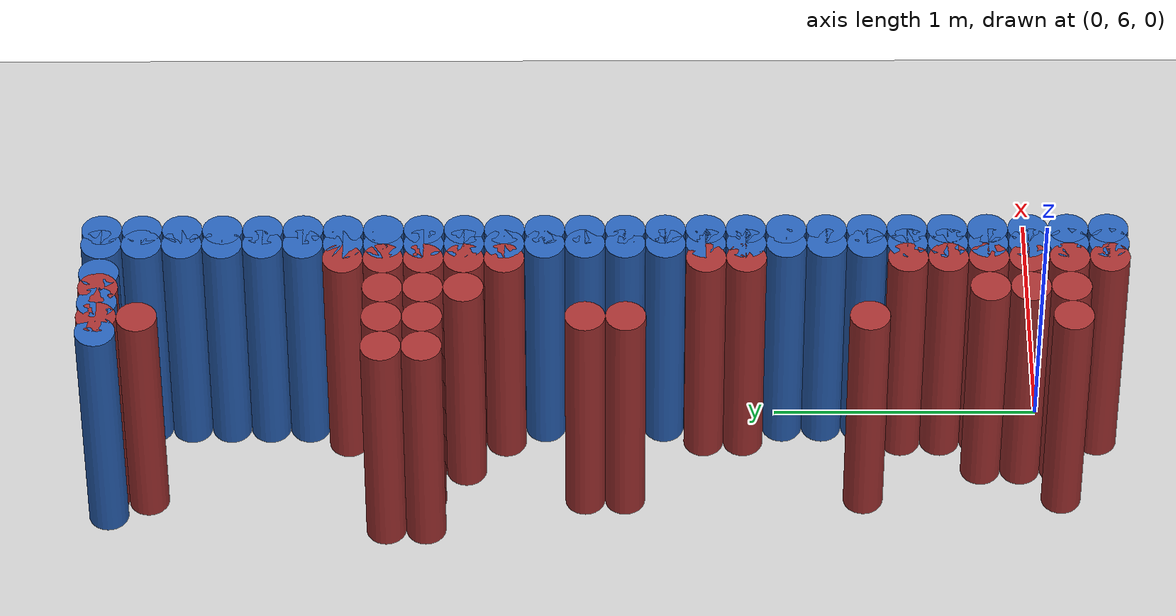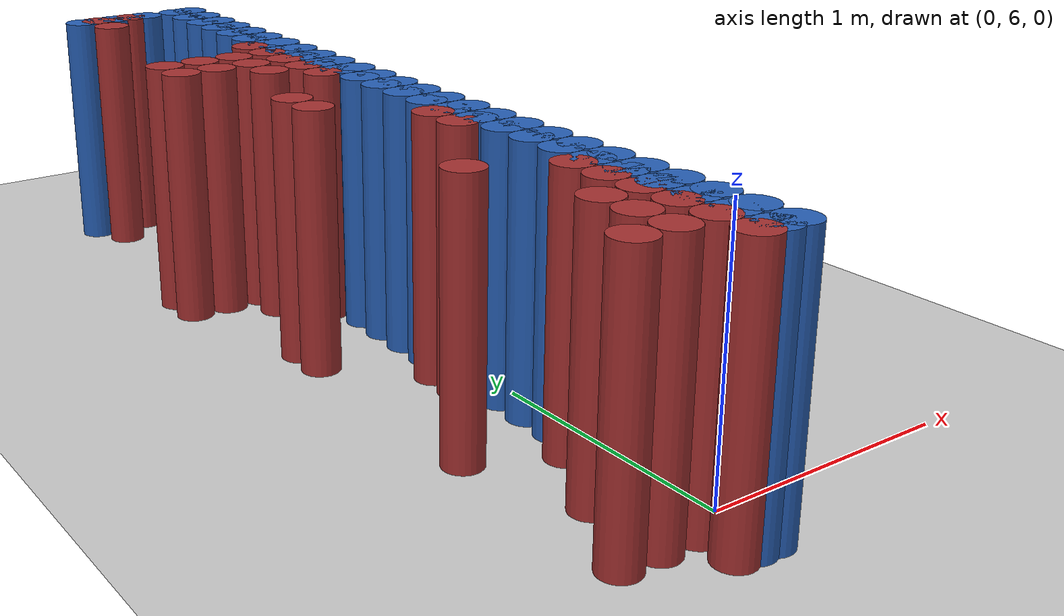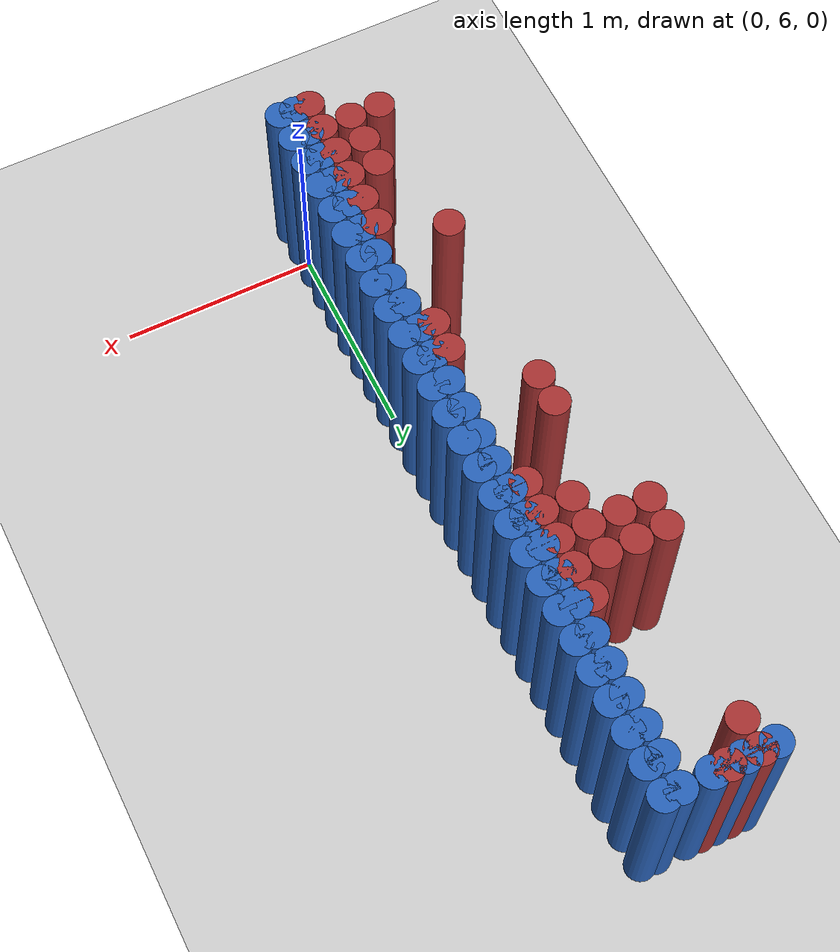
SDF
<sdf version="1.6">
 <world name="barn_world">
  <model name="ground_plane">
   <static>1</static>
   <link name="link">
    <collision name="collision">
     <geometry><plane><normal>0 0 1</normal><size>100 100</size></plane></geometry>
    </collision>
    <visual name="visual">
     <geometry><plane><normal>0 0 1</normal><size>100 100</size></plane></geometry>
     <material>
      <script><uri>file://media/materials/scripts/gazebo.material</uri><name>Gazebo/Grey</name></script>
     </material>
    </visual>
   </link>
  </model>
  <model name="unit_cylinder_272">
   <static>1</static>
   <pose>-0.6000 8.3250 0.5 0 0 0</pose>
   <link name="link">
    <collision name="collision">
     <geometry><cylinder><radius>0.075</radius><length>1</length></cylinder></geometry>
    </collision>
    <visual name="visual">
     <geometry><cylinder><radius>0.075</radius><length>1</length></cylinder></geometry>
     <material><ambient>0.648 0.192 0.192 1</ambient><diffuse>0.648 0.192 0.192 1</diffuse></material>
    </visual>
   </link>
  </model>
  <model name="unit_cylinder_273">
   <static>1</static>
   <pose>-0.6000 8.4750 0.5 0 0 0</pose>
   <link name="link">
    <collision name="collision">
     <geometry><cylinder><radius>0.075</radius><length>1</length></cylinder></geometry>
    </collision>
    <visual name="visual">
     <geometry><cylinder><radius>0.075</radius><length>1</length></cylinder></geometry>
     <material><ambient>0.648 0.192 0.192 1</ambient><diffuse>0.648 0.192 0.192 1</diffuse></material>
    </visual>
   </link>
  </model>
  <model name="unit_cylinder_275">
   <static>1</static>
   <pose>-0.4500 5.9250 0.5 0 0 0</pose>
   <link name="link">
    <collision name="collision">
     <geometry><cylinder><radius>0.075</radius><length>1</length></cylinder></geometry>
    </collision>
    <visual name="visual">
     <geometry><cylinder><radius>0.075</radius><length>1</length></cylinder></geometry>
     <material><ambient>0.648 0.192 0.192 1</ambient><diffuse>0.648 0.192 0.192 1</diffuse></material>
    </visual>
   </link>
  </model>
  <model name="unit_cylinder_276">
   <static>1</static>
   <pose>-0.4500 6.6750 0.5 0 0 0</pose>
   <link name="link">
    <collision name="collision">
     <geometry><cylinder><radius>0.075</radius><length>1</length></cylinder></geometry>
    </collision>
    <visual name="visual">
     <geometry><cylinder><radius>0.075</radius><length>1</length></cylinder></geometry>
     <material><ambient>0.648 0.192 0.192 1</ambient><diffuse>0.648 0.192 0.192 1</diffuse></material>
    </visual>
   </link>
  </model>
  <model name="unit_cylinder_277">
   <static>1</static>
   <pose>-0.4500 7.5750 0.5 0 0 0</pose>
   <link name="link">
    <collision name="collision">
     <geometry><cylinder><radius>0.075</radius><length>1</length></cylinder></geometry>
    </collision>
    <visual name="visual">
     <geometry><cylinder><radius>0.075</radius><length>1</length></cylinder></geometry>
     <material><ambient>0.648 0.192 0.192 1</ambient><diffuse>0.648 0.192 0.192 1</diffuse></material>
    </visual>
   </link>
  </model>
  <model name="unit_cylinder_278">
   <static>1</static>
   <pose>-0.4500 7.7250 0.5 0 0 0</pose>
   <link name="link">
    <collision name="collision">
     <geometry><cylinder><radius>0.075</radius><length>1</length></cylinder></geometry>
    </collision>
    <visual name="visual">
     <geometry><cylinder><radius>0.075</radius><length>1</length></cylinder></geometry>
     <material><ambient>0.648 0.192 0.192 1</ambient><diffuse>0.648 0.192 0.192 1</diffuse></material>
    </visual>
   </link>
  </model>
  <model name="unit_cylinder_279">
   <static>1</static>
   <pose>-0.4500 8.3250 0.5 0 0 0</pose>
   <link name="link">
    <collision name="collision">
     <geometry><cylinder><radius>0.075</radius><length>1</length></cylinder></geometry>
    </collision>
    <visual name="visual">
     <geometry><cylinder><radius>0.075</radius><length>1</length></cylinder></geometry>
     <material><ambient>0.648 0.192 0.192 1</ambient><diffuse>0.648 0.192 0.192 1</diffuse></material>
    </visual>
   </link>
  </model>
  <model name="unit_cylinder_280">
   <static>1</static>
   <pose>-0.4500 8.4750 0.5 0 0 0</pose>
   <link name="link">
    <collision name="collision">
     <geometry><cylinder><radius>0.075</radius><length>1</length></cylinder></geometry>
    </collision>
    <visual name="visual">
     <geometry><cylinder><radius>0.075</radius><length>1</length></cylinder></geometry>
     <material><ambient>0.648 0.192 0.192 1</ambient><diffuse>0.648 0.192 0.192 1</diffuse></material>
    </visual>
   </link>
  </model>
  <model name="unit_cylinder_281">
   <static>1</static>
   <pose>-0.4500 9.3750 0.5 0 0 0</pose>
   <link name="link">
    <collision name="collision">
     <geometry><cylinder><radius>0.075</radius><length>1</length></cylinder></geometry>
    </collision>
    <visual name="visual">
     <geometry><cylinder><radius>0.075</radius><length>1</length></cylinder></geometry>
     <material><ambient>0.648 0.192 0.192 1</ambient><diffuse>0.648 0.192 0.192 1</diffuse></material>
    </visual>
   </link>
  </model>
  <model name="unit_cylinder_282">
   <static>1</static>
   <pose>-0.4500 9.5250 0.5 0 0 0</pose>
   <link name="link">
    <collision name="collision">
     <geometry><cylinder><radius>0.075</radius><length>1</length></cylinder></geometry>
    </collision>
    <visual name="visual">
     <geometry><cylinder><radius>0.075</radius><length>1</length></cylinder></geometry>
     <material><ambient>0.648 0.192 0.192 1</ambient><diffuse>0.648 0.192 0.192 1</diffuse></material>
    </visual>
   </link>
  </model>
  <model name="unit_cylinder_285">
   <static>1</static>
   <pose>-0.3000 5.9250 0.5 0 0 0</pose>
   <link name="link">
    <collision name="collision">
     <geometry><cylinder><radius>0.075</radius><length>1</length></cylinder></geometry>
    </collision>
    <visual name="visual">
     <geometry><cylinder><radius>0.075</radius><length>1</length></cylinder></geometry>
     <material><ambient>0.648 0.192 0.192 1</ambient><diffuse>0.648 0.192 0.192 1</diffuse></material>
    </visual>
   </link>
  </model>
  <model name="unit_cylinder_286">
   <static>1</static>
   <pose>-0.3000 6.0750 0.5 0 0 0</pose>
   <link name="link">
    <collision name="collision">
     <geometry><cylinder><radius>0.075</radius><length>1</length></cylinder></geometry>
    </collision>
    <visual name="visual">
     <geometry><cylinder><radius>0.075</radius><length>1</length></cylinder></geometry>
     <material><ambient>0.648 0.192 0.192 1</ambient><diffuse>0.648 0.192 0.192 1</diffuse></material>
    </visual>
   </link>
  </model>
  <model name="unit_cylinder_287">
   <static>1</static>
   <pose>-0.3000 6.2250 0.5 0 0 0</pose>
   <link name="link">
    <collision name="collision">
     <geometry><cylinder><radius>0.075</radius><length>1</length></cylinder></geometry>
    </collision>
    <visual name="visual">
     <geometry><cylinder><radius>0.075</radius><length>1</length></cylinder></geometry>
     <material><ambient>0.648 0.192 0.192 1</ambient><diffuse>0.648 0.192 0.192 1</diffuse></material>
    </visual>
   </link>
  </model>
  <model name="unit_cylinder_288">
   <static>1</static>
   <pose>-0.3000 8.1750 0.5 0 0 0</pose>
   <link name="link">
    <collision name="collision">
     <geometry><cylinder><radius>0.075</radius><length>1</length></cylinder></geometry>
    </collision>
    <visual name="visual">
     <geometry><cylinder><radius>0.075</radius><length>1</length></cylinder></geometry>
     <material><ambient>0.648 0.192 0.192 1</ambient><diffuse>0.648 0.192 0.192 1</diffuse></material>
    </visual>
   </link>
  </model>
  <model name="unit_cylinder_289">
   <static>1</static>
   <pose>-0.3000 8.3250 0.5 0 0 0</pose>
   <link name="link">
    <collision name="collision">
     <geometry><cylinder><radius>0.075</radius><length>1</length></cylinder></geometry>
    </collision>
    <visual name="visual">
     <geometry><cylinder><radius>0.075</radius><length>1</length></cylinder></geometry>
     <material><ambient>0.648 0.192 0.192 1</ambient><diffuse>0.648 0.192 0.192 1</diffuse></material>
    </visual>
   </link>
  </model>
  <model name="unit_cylinder_290">
   <static>1</static>
   <pose>-0.3000 8.4750 0.5 0 0 0</pose>
   <link name="link">
    <collision name="collision">
     <geometry><cylinder><radius>0.075</radius><length>1</length></cylinder></geometry>
    </collision>
    <visual name="visual">
     <geometry><cylinder><radius>0.075</radius><length>1</length></cylinder></geometry>
     <material><ambient>0.648 0.192 0.192 1</ambient><diffuse>0.648 0.192 0.192 1</diffuse></material>
    </visual>
   </link>
  </model>
  <model name="unit_cylinder_291">
   <static>1</static>
   <pose>-0.3000 9.5250 0.5 0 0 0</pose>
   <link name="link">
    <collision name="collision">
     <geometry><cylinder><radius>0.075</radius><length>1</length></cylinder></geometry>
    </collision>
    <visual name="visual">
     <geometry><cylinder><radius>0.075</radius><length>1</length></cylinder></geometry>
     <material><ambient>0.648 0.192 0.192 1</ambient><diffuse>0.648 0.192 0.192 1</diffuse></material>
    </visual>
   </link>
  </model>
  <model name="unit_cylinder_295">
   <static>1</static>
   <pose>-0.1500 5.7750 0.5 0 0 0</pose>
   <link name="link">
    <collision name="collision">
     <geometry><cylinder><radius>0.075</radius><length>1</length></cylinder></geometry>
    </collision>
    <visual name="visual">
     <geometry><cylinder><radius>0.075</radius><length>1</length></cylinder></geometry>
     <material><ambient>0.648 0.192 0.192 1</ambient><diffuse>0.648 0.192 0.192 1</diffuse></material>
    </visual>
   </link>
  </model>
  <model name="unit_cylinder_296">
   <static>1</static>
   <pose>-0.1500 5.9250 0.5 0 0 0</pose>
   <link name="link">
    <collision name="collision">
     <geometry><cylinder><radius>0.075</radius><length>1</length></cylinder></geometry>
    </collision>
    <visual name="visual">
     <geometry><cylinder><radius>0.075</radius><length>1</length></cylinder></geometry>
     <material><ambient>0.648 0.192 0.192 1</ambient><diffuse>0.648 0.192 0.192 1</diffuse></material>
    </visual>
   </link>
  </model>
  <model name="unit_cylinder_297">
   <static>1</static>
   <pose>-0.1500 6.0750 0.5 0 0 0</pose>
   <link name="link">
    <collision name="collision">
     <geometry><cylinder><radius>0.075</radius><length>1</length></cylinder></geometry>
    </collision>
    <visual name="visual">
     <geometry><cylinder><radius>0.075</radius><length>1</length></cylinder></geometry>
     <material><ambient>0.648 0.192 0.192 1</ambient><diffuse>0.648 0.192 0.192 1</diffuse></material>
    </visual>
   </link>
  </model>
  <model name="unit_cylinder_298">
   <static>1</static>
   <pose>-0.1500 6.2250 0.5 0 0 0</pose>
   <link name="link">
    <collision name="collision">
     <geometry><cylinder><radius>0.075</radius><length>1</length></cylinder></geometry>
    </collision>
    <visual name="visual">
     <geometry><cylinder><radius>0.075</radius><length>1</length></cylinder></geometry>
     <material><ambient>0.648 0.192 0.192 1</ambient><diffuse>0.648 0.192 0.192 1</diffuse></material>
    </visual>
   </link>
  </model>
  <model name="unit_cylinder_299">
   <static>1</static>
   <pose>-0.1500 6.3750 0.5 0 0 0</pose>
   <link name="link">
    <collision name="collision">
     <geometry><cylinder><radius>0.075</radius><length>1</length></cylinder></geometry>
    </collision>
    <visual name="visual">
     <geometry><cylinder><radius>0.075</radius><length>1</length></cylinder></geometry>
     <material><ambient>0.648 0.192 0.192 1</ambient><diffuse>0.648 0.192 0.192 1</diffuse></material>
    </visual>
   </link>
  </model>
  <model name="unit_cylinder_300">
   <static>1</static>
   <pose>-0.1500 6.5250 0.5 0 0 0</pose>
   <link name="link">
    <collision name="collision">
     <geometry><cylinder><radius>0.075</radius><length>1</length></cylinder></geometry>
    </collision>
    <visual name="visual">
     <geometry><cylinder><radius>0.075</radius><length>1</length></cylinder></geometry>
     <material><ambient>0.648 0.192 0.192 1</ambient><diffuse>0.648 0.192 0.192 1</diffuse></material>
    </visual>
   </link>
  </model>
  <model name="unit_cylinder_301">
   <static>1</static>
   <pose>-0.1500 7.1250 0.5 0 0 0</pose>
   <link name="link">
    <collision name="collision">
     <geometry><cylinder><radius>0.075</radius><length>1</length></cylinder></geometry>
    </collision>
    <visual name="visual">
     <geometry><cylinder><radius>0.075</radius><length>1</length></cylinder></geometry>
     <material><ambient>0.648 0.192 0.192 1</ambient><diffuse>0.648 0.192 0.192 1</diffuse></material>
    </visual>
   </link>
  </model>
  <model name="unit_cylinder_302">
   <static>1</static>
   <pose>-0.1500 7.2750 0.5 0 0 0</pose>
   <link name="link">
    <collision name="collision">
     <geometry><cylinder><radius>0.075</radius><length>1</length></cylinder></geometry>
    </collision>
    <visual name="visual">
     <geometry><cylinder><radius>0.075</radius><length>1</length></cylinder></geometry>
     <material><ambient>0.648 0.192 0.192 1</ambient><diffuse>0.648 0.192 0.192 1</diffuse></material>
    </visual>
   </link>
  </model>
  <model name="unit_cylinder_303">
   <static>1</static>
   <pose>-0.1500 8.0250 0.5 0 0 0</pose>
   <link name="link">
    <collision name="collision">
     <geometry><cylinder><radius>0.075</radius><length>1</length></cylinder></geometry>
    </collision>
    <visual name="visual">
     <geometry><cylinder><radius>0.075</radius><length>1</length></cylinder></geometry>
     <material><ambient>0.648 0.192 0.192 1</ambient><diffuse>0.648 0.192 0.192 1</diffuse></material>
    </visual>
   </link>
  </model>
  <model name="unit_cylinder_304">
   <static>1</static>
   <pose>-0.1500 8.1750 0.5 0 0 0</pose>
   <link name="link">
    <collision name="collision">
     <geometry><cylinder><radius>0.075</radius><length>1</length></cylinder></geometry>
    </collision>
    <visual name="visual">
     <geometry><cylinder><radius>0.075</radius><length>1</length></cylinder></geometry>
     <material><ambient>0.648 0.192 0.192 1</ambient><diffuse>0.648 0.192 0.192 1</diffuse></material>
    </visual>
   </link>
  </model>
  <model name="unit_cylinder_305">
   <static>1</static>
   <pose>-0.1500 8.3250 0.5 0 0 0</pose>
   <link name="link">
    <collision name="collision">
     <geometry><cylinder><radius>0.075</radius><length>1</length></cylinder></geometry>
    </collision>
    <visual name="visual">
     <geometry><cylinder><radius>0.075</radius><length>1</length></cylinder></geometry>
     <material><ambient>0.648 0.192 0.192 1</ambient><diffuse>0.648 0.192 0.192 1</diffuse></material>
    </visual>
   </link>
  </model>
  <model name="unit_cylinder_306">
   <static>1</static>
   <pose>-0.1500 8.4750 0.5 0 0 0</pose>
   <link name="link">
    <collision name="collision">
     <geometry><cylinder><radius>0.075</radius><length>1</length></cylinder></geometry>
    </collision>
    <visual name="visual">
     <geometry><cylinder><radius>0.075</radius><length>1</length></cylinder></geometry>
     <material><ambient>0.648 0.192 0.192 1</ambient><diffuse>0.648 0.192 0.192 1</diffuse></material>
    </visual>
   </link>
  </model>
  <model name="unit_cylinder_307">
   <static>1</static>
   <pose>-0.1500 8.6250 0.5 0 0 0</pose>
   <link name="link">
    <collision name="collision">
     <geometry><cylinder><radius>0.075</radius><length>1</length></cylinder></geometry>
    </collision>
    <visual name="visual">
     <geometry><cylinder><radius>0.075</radius><length>1</length></cylinder></geometry>
     <material><ambient>0.648 0.192 0.192 1</ambient><diffuse>0.648 0.192 0.192 1</diffuse></material>
    </visual>
   </link>
  </model>
  <model name="unit_cylinder_312">
   <static>1</static>
   <pose>0.0000 5.7750 0.5 0 0 0</pose>
   <link name="link">
    <collision name="collision">
     <geometry><cylinder><radius>0.075</radius><length>1</length></cylinder></geometry>
    </collision>
    <visual name="visual">
     <geometry><cylinder><radius>0.075</radius><length>1</length></cylinder></geometry>
     <material><ambient>0.152 0.379 0.72 1</ambient><diffuse>0.152 0.379 0.72 1</diffuse></material>
    </visual>
   </link>
  </model>
  <model name="unit_cylinder_313">
   <static>1</static>
   <pose>0.0000 5.9250 0.5 0 0 0</pose>
   <link name="link">
    <collision name="collision">
     <geometry><cylinder><radius>0.075</radius><length>1</length></cylinder></geometry>
    </collision>
    <visual name="visual">
     <geometry><cylinder><radius>0.075</radius><length>1</length></cylinder></geometry>
     <material><ambient>0.152 0.379 0.72 1</ambient><diffuse>0.152 0.379 0.72 1</diffuse></material>
    </visual>
   </link>
  </model>
  <model name="unit_cylinder_314">
   <static>1</static>
   <pose>0.0000 6.0750 0.5 0 0 0</pose>
   <link name="link">
    <collision name="collision">
     <geometry><cylinder><radius>0.075</radius><length>1</length></cylinder></geometry>
    </collision>
    <visual name="visual">
     <geometry><cylinder><radius>0.075</radius><length>1</length></cylinder></geometry>
     <material><ambient>0.152 0.379 0.72 1</ambient><diffuse>0.152 0.379 0.72 1</diffuse></material>
    </visual>
   </link>
  </model>
  <model name="unit_cylinder_315">
   <static>1</static>
   <pose>0.0000 6.2250 0.5 0 0 0</pose>
   <link name="link">
    <collision name="collision">
     <geometry><cylinder><radius>0.075</radius><length>1</length></cylinder></geometry>
    </collision>
    <visual name="visual">
     <geometry><cylinder><radius>0.075</radius><length>1</length></cylinder></geometry>
     <material><ambient>0.152 0.379 0.72 1</ambient><diffuse>0.152 0.379 0.72 1</diffuse></material>
    </visual>
   </link>
  </model>
  <model name="unit_cylinder_316">
   <static>1</static>
   <pose>0.0000 6.3750 0.5 0 0 0</pose>
   <link name="link">
    <collision name="collision">
     <geometry><cylinder><radius>0.075</radius><length>1</length></cylinder></geometry>
    </collision>
    <visual name="visual">
     <geometry><cylinder><radius>0.075</radius><length>1</length></cylinder></geometry>
     <material><ambient>0.152 0.379 0.72 1</ambient><diffuse>0.152 0.379 0.72 1</diffuse></material>
    </visual>
   </link>
  </model>
  <model name="unit_cylinder_317">
   <static>1</static>
   <pose>0.0000 6.5250 0.5 0 0 0</pose>
   <link name="link">
    <collision name="collision">
     <geometry><cylinder><radius>0.075</radius><length>1</length></cylinder></geometry>
    </collision>
    <visual name="visual">
     <geometry><cylinder><radius>0.075</radius><length>1</length></cylinder></geometry>
     <material><ambient>0.152 0.379 0.72 1</ambient><diffuse>0.152 0.379 0.72 1</diffuse></material>
    </visual>
   </link>
  </model>
  <model name="unit_cylinder_318">
   <static>1</static>
   <pose>0.0000 6.6750 0.5 0 0 0</pose>
   <link name="link">
    <collision name="collision">
     <geometry><cylinder><radius>0.075</radius><length>1</length></cylinder></geometry>
    </collision>
    <visual name="visual">
     <geometry><cylinder><radius>0.075</radius><length>1</length></cylinder></geometry>
     <material><ambient>0.152 0.379 0.72 1</ambient><diffuse>0.152 0.379 0.72 1</diffuse></material>
    </visual>
   </link>
  </model>
  <model name="unit_cylinder_319">
   <static>1</static>
   <pose>0.0000 6.8250 0.5 0 0 0</pose>
   <link name="link">
    <collision name="collision">
     <geometry><cylinder><radius>0.075</radius><length>1</length></cylinder></geometry>
    </collision>
    <visual name="visual">
     <geometry><cylinder><radius>0.075</radius><length>1</length></cylinder></geometry>
     <material><ambient>0.152 0.379 0.72 1</ambient><diffuse>0.152 0.379 0.72 1</diffuse></material>
    </visual>
   </link>
  </model>
  <model name="unit_cylinder_320">
   <static>1</static>
   <pose>0.0000 6.9750 0.5 0 0 0</pose>
   <link name="link">
    <collision name="collision">
     <geometry><cylinder><radius>0.075</radius><length>1</length></cylinder></geometry>
    </collision>
    <visual name="visual">
     <geometry><cylinder><radius>0.075</radius><length>1</length></cylinder></geometry>
     <material><ambient>0.152 0.379 0.72 1</ambient><diffuse>0.152 0.379 0.72 1</diffuse></material>
    </visual>
   </link>
  </model>
  <model name="unit_cylinder_321">
   <static>1</static>
   <pose>0.0000 7.1250 0.5 0 0 0</pose>
   <link name="link">
    <collision name="collision">
     <geometry><cylinder><radius>0.075</radius><length>1</length></cylinder></geometry>
    </collision>
    <visual name="visual">
     <geometry><cylinder><radius>0.075</radius><length>1</length></cylinder></geometry>
     <material><ambient>0.152 0.379 0.72 1</ambient><diffuse>0.152 0.379 0.72 1</diffuse></material>
    </visual>
   </link>
  </model>
  <model name="unit_cylinder_322">
   <static>1</static>
   <pose>0.0000 7.2750 0.5 0 0 0</pose>
   <link name="link">
    <collision name="collision">
     <geometry><cylinder><radius>0.075</radius><length>1</length></cylinder></geometry>
    </collision>
    <visual name="visual">
     <geometry><cylinder><radius>0.075</radius><length>1</length></cylinder></geometry>
     <material><ambient>0.152 0.379 0.72 1</ambient><diffuse>0.152 0.379 0.72 1</diffuse></material>
    </visual>
   </link>
  </model>
  <model name="unit_cylinder_323">
   <static>1</static>
   <pose>0.0000 7.4250 0.5 0 0 0</pose>
   <link name="link">
    <collision name="collision">
     <geometry><cylinder><radius>0.075</radius><length>1</length></cylinder></geometry>
    </collision>
    <visual name="visual">
     <geometry><cylinder><radius>0.075</radius><length>1</length></cylinder></geometry>
     <material><ambient>0.152 0.379 0.72 1</ambient><diffuse>0.152 0.379 0.72 1</diffuse></material>
    </visual>
   </link>
  </model>
  <model name="unit_cylinder_324">
   <static>1</static>
   <pose>0.0000 7.5750 0.5 0 0 0</pose>
   <link name="link">
    <collision name="collision">
     <geometry><cylinder><radius>0.075</radius><length>1</length></cylinder></geometry>
    </collision>
    <visual name="visual">
     <geometry><cylinder><radius>0.075</radius><length>1</length></cylinder></geometry>
     <material><ambient>0.152 0.379 0.72 1</ambient><diffuse>0.152 0.379 0.72 1</diffuse></material>
    </visual>
   </link>
  </model>
  <model name="unit_cylinder_325">
   <static>1</static>
   <pose>0.0000 7.7250 0.5 0 0 0</pose>
   <link name="link">
    <collision name="collision">
     <geometry><cylinder><radius>0.075</radius><length>1</length></cylinder></geometry>
    </collision>
    <visual name="visual">
     <geometry><cylinder><radius>0.075</radius><length>1</length></cylinder></geometry>
     <material><ambient>0.152 0.379 0.72 1</ambient><diffuse>0.152 0.379 0.72 1</diffuse></material>
    </visual>
   </link>
  </model>
  <model name="unit_cylinder_326">
   <static>1</static>
   <pose>0.0000 7.8750 0.5 0 0 0</pose>
   <link name="link">
    <collision name="collision">
     <geometry><cylinder><radius>0.075</radius><length>1</length></cylinder></geometry>
    </collision>
    <visual name="visual">
     <geometry><cylinder><radius>0.075</radius><length>1</length></cylinder></geometry>
     <material><ambient>0.152 0.379 0.72 1</ambient><diffuse>0.152 0.379 0.72 1</diffuse></material>
    </visual>
   </link>
  </model>
  <model name="unit_cylinder_327">
   <static>1</static>
   <pose>0.0000 8.0250 0.5 0 0 0</pose>
   <link name="link">
    <collision name="collision">
     <geometry><cylinder><radius>0.075</radius><length>1</length></cylinder></geometry>
    </collision>
    <visual name="visual">
     <geometry><cylinder><radius>0.075</radius><length>1</length></cylinder></geometry>
     <material><ambient>0.152 0.379 0.72 1</ambient><diffuse>0.152 0.379 0.72 1</diffuse></material>
    </visual>
   </link>
  </model>
  <model name="unit_cylinder_328">
   <static>1</static>
   <pose>0.0000 8.1750 0.5 0 0 0</pose>
   <link name="link">
    <collision name="collision">
     <geometry><cylinder><radius>0.075</radius><length>1</length></cylinder></geometry>
    </collision>
    <visual name="visual">
     <geometry><cylinder><radius>0.075</radius><length>1</length></cylinder></geometry>
     <material><ambient>0.152 0.379 0.72 1</ambient><diffuse>0.152 0.379 0.72 1</diffuse></material>
    </visual>
   </link>
  </model>
  <model name="unit_cylinder_329">
   <static>1</static>
   <pose>0.0000 8.3250 0.5 0 0 0</pose>
   <link name="link">
    <collision name="collision">
     <geometry><cylinder><radius>0.075</radius><length>1</length></cylinder></geometry>
    </collision>
    <visual name="visual">
     <geometry><cylinder><radius>0.075</radius><length>1</length></cylinder></geometry>
     <material><ambient>0.152 0.379 0.72 1</ambient><diffuse>0.152 0.379 0.72 1</diffuse></material>
    </visual>
   </link>
  </model>
  <model name="unit_cylinder_330">
   <static>1</static>
   <pose>0.0000 8.4750 0.5 0 0 0</pose>
   <link name="link">
    <collision name="collision">
     <geometry><cylinder><radius>0.075</radius><length>1</length></cylinder></geometry>
    </collision>
    <visual name="visual">
     <geometry><cylinder><radius>0.075</radius><length>1</length></cylinder></geometry>
     <material><ambient>0.152 0.379 0.72 1</ambient><diffuse>0.152 0.379 0.72 1</diffuse></material>
    </visual>
   </link>
  </model>
  <model name="unit_cylinder_331">
   <static>1</static>
   <pose>0.0000 8.6250 0.5 0 0 0</pose>
   <link name="link">
    <collision name="collision">
     <geometry><cylinder><radius>0.075</radius><length>1</length></cylinder></geometry>
    </collision>
    <visual name="visual">
     <geometry><cylinder><radius>0.075</radius><length>1</length></cylinder></geometry>
     <material><ambient>0.152 0.379 0.72 1</ambient><diffuse>0.152 0.379 0.72 1</diffuse></material>
    </visual>
   </link>
  </model>
  <model name="unit_cylinder_332">
   <static>1</static>
   <pose>0.0000 8.7750 0.5 0 0 0</pose>
   <link name="link">
    <collision name="collision">
     <geometry><cylinder><radius>0.075</radius><length>1</length></cylinder></geometry>
    </collision>
    <visual name="visual">
     <geometry><cylinder><radius>0.075</radius><length>1</length></cylinder></geometry>
     <material><ambient>0.152 0.379 0.72 1</ambient><diffuse>0.152 0.379 0.72 1</diffuse></material>
    </visual>
   </link>
  </model>
  <model name="unit_cylinder_333">
   <static>1</static>
   <pose>0.0000 8.9250 0.5 0 0 0</pose>
   <link name="link">
    <collision name="collision">
     <geometry><cylinder><radius>0.075</radius><length>1</length></cylinder></geometry>
    </collision>
    <visual name="visual">
     <geometry><cylinder><radius>0.075</radius><length>1</length></cylinder></geometry>
     <material><ambient>0.152 0.379 0.72 1</ambient><diffuse>0.152 0.379 0.72 1</diffuse></material>
    </visual>
   </link>
  </model>
  <model name="unit_cylinder_334">
   <static>1</static>
   <pose>0.0000 9.0750 0.5 0 0 0</pose>
   <link name="link">
    <collision name="collision">
     <geometry><cylinder><radius>0.075</radius><length>1</length></cylinder></geometry>
    </collision>
    <visual name="visual">
     <geometry><cylinder><radius>0.075</radius><length>1</length></cylinder></geometry>
     <material><ambient>0.152 0.379 0.72 1</ambient><diffuse>0.152 0.379 0.72 1</diffuse></material>
    </visual>
   </link>
  </model>
  <model name="unit_cylinder_335">
   <static>1</static>
   <pose>0.0000 9.2250 0.5 0 0 0</pose>
   <link name="link">
    <collision name="collision">
     <geometry><cylinder><radius>0.075</radius><length>1</length></cylinder></geometry>
    </collision>
    <visual name="visual">
     <geometry><cylinder><radius>0.075</radius><length>1</length></cylinder></geometry>
     <material><ambient>0.152 0.379 0.72 1</ambient><diffuse>0.152 0.379 0.72 1</diffuse></material>
    </visual>
   </link>
  </model>
  <model name="unit_cylinder_336">
   <static>1</static>
   <pose>0.0000 9.3750 0.5 0 0 0</pose>
   <link name="link">
    <collision name="collision">
     <geometry><cylinder><radius>0.075</radius><length>1</length></cylinder></geometry>
    </collision>
    <visual name="visual">
     <geometry><cylinder><radius>0.075</radius><length>1</length></cylinder></geometry>
     <material><ambient>0.152 0.379 0.72 1</ambient><diffuse>0.152 0.379 0.72 1</diffuse></material>
    </visual>
   </link>
  </model>
  <model name="unit_cylinder_337">
   <static>1</static>
   <pose>0.0000 9.5250 0.5 0 0 0</pose>
   <link name="link">
    <collision name="collision">
     <geometry><cylinder><radius>0.075</radius><length>1</length></cylinder></geometry>
    </collision>
    <visual name="visual">
     <geometry><cylinder><radius>0.075</radius><length>1</length></cylinder></geometry>
     <material><ambient>0.152 0.379 0.72 1</ambient><diffuse>0.152 0.379 0.72 1</diffuse></material>
    </visual>
   </link>
  </model>
  <model name="unit_cylinder_338">
   <static>1</static>
   <pose>-0.0750 9.5250 0.5 0 0 0</pose>
   <link name="link">
    <collision name="collision">
     <geometry><cylinder><radius>0.075</radius><length>1</length></cylinder></geometry>
    </collision>
    <visual name="visual">
     <geometry><cylinder><radius>0.075</radius><length>1</length></cylinder></geometry>
     <material><ambient>0.152 0.379 0.72 1</ambient><diffuse>0.152 0.379 0.72 1</diffuse></material>
    </visual>
   </link>
  </model>
  <model name="unit_cylinder_339">
   <static>1</static>
   <pose>-0.2250 9.5250 0.5 0 0 0</pose>
   <link name="link">
    <collision name="collision">
     <geometry><cylinder><radius>0.075</radius><length>1</length></cylinder></geometry>
    </collision>
    <visual name="visual">
     <geometry><cylinder><radius>0.075</radius><length>1</length></cylinder></geometry>
     <material><ambient>0.152 0.379 0.72 1</ambient><diffuse>0.152 0.379 0.72 1</diffuse></material>
    </visual>
   </link>
  </model>
  <model name="unit_cylinder_340">
   <static>1</static>
   <pose>-0.3750 9.5250 0.5 0 0 0</pose>
   <link name="link">
    <collision name="collision">
     <geometry><cylinder><radius>0.075</radius><length>1</length></cylinder></geometry>
    </collision>
    <visual name="visual">
     <geometry><cylinder><radius>0.075</radius><length>1</length></cylinder></geometry>
     <material><ambient>0.152 0.379 0.72 1</ambient><diffuse>0.152 0.379 0.72 1</diffuse></material>
    </visual>
   </link>
  </model>
  <model name="unit_cylinder_341">
   <static>1</static>
   <pose>-0.5250 9.5250 0.5 0 0 0</pose>
   <link name="link">
    <collision name="collision">
     <geometry><cylinder><radius>0.075</radius><length>1</length></cylinder></geometry>
    </collision>
    <visual name="visual">
     <geometry><cylinder><radius>0.075</radius><length>1</length></cylinder></geometry>
     <material><ambient>0.152 0.379 0.72 1</ambient><diffuse>0.152 0.379 0.72 1</diffuse></material>
    </visual>
   </link>
  </model>
  <model name="unit_cylinder_376">
   <static>1</static>
   <pose>-0.0750 5.7750 0.5 0 0 0</pose>
   <link name="link">
    <collision name="collision">
     <geometry><cylinder><radius>0.075</radius><length>1</length></cylinder></geometry>
    </collision>
    <visual name="visual">
     <geometry><cylinder><radius>0.075</radius><length>1</length></cylinder></geometry>
     <material><ambient>0.152 0.379 0.72 1</ambient><diffuse>0.152 0.379 0.72 1</diffuse></material>
    </visual>
   </link>
  </model>
  <model name="unit_cylinder_378">
   <static>1</static>
   <pose>-0.0750 5.9250 0.5 0 0 0</pose>
   <link name="link">
    <collision name="collision">
     <geometry><cylinder><radius>0.075</radius><length>1</length></cylinder></geometry>
    </collision>
    <visual name="visual">
     <geometry><cylinder><radius>0.075</radius><length>1</length></cylinder></geometry>
     <material><ambient>0.152 0.379 0.72 1</ambient><diffuse>0.152 0.379 0.72 1</diffuse></material>
    </visual>
   </link>
  </model>
  <model name="unit_cylinder_380">
   <static>1</static>
   <pose>-0.0750 6.0750 0.5 0 0 0</pose>
   <link name="link">
    <collision name="collision">
     <geometry><cylinder><radius>0.075</radius><length>1</length></cylinder></geometry>
    </collision>
    <visual name="visual">
     <geometry><cylinder><radius>0.075</radius><length>1</length></cylinder></geometry>
     <material><ambient>0.152 0.379 0.72 1</ambient><diffuse>0.152 0.379 0.72 1</diffuse></material>
    </visual>
   </link>
  </model>
  <model name="unit_cylinder_382">
   <static>1</static>
   <pose>-0.0750 6.2250 0.5 0 0 0</pose>
   <link name="link">
    <collision name="collision">
     <geometry><cylinder><radius>0.075</radius><length>1</length></cylinder></geometry>
    </collision>
    <visual name="visual">
     <geometry><cylinder><radius>0.075</radius><length>1</length></cylinder></geometry>
     <material><ambient>0.152 0.379 0.72 1</ambient><diffuse>0.152 0.379 0.72 1</diffuse></material>
    </visual>
   </link>
  </model>
  <model name="unit_cylinder_384">
   <static>1</static>
   <pose>-0.0750 6.3750 0.5 0 0 0</pose>
   <link name="link">
    <collision name="collision">
     <geometry><cylinder><radius>0.075</radius><length>1</length></cylinder></geometry>
    </collision>
    <visual name="visual">
     <geometry><cylinder><radius>0.075</radius><length>1</length></cylinder></geometry>
     <material><ambient>0.152 0.379 0.72 1</ambient><diffuse>0.152 0.379 0.72 1</diffuse></material>
    </visual>
   </link>
  </model>
  <model name="unit_cylinder_386">
   <static>1</static>
   <pose>-0.0750 6.5250 0.5 0 0 0</pose>
   <link name="link">
    <collision name="collision">
     <geometry><cylinder><radius>0.075</radius><length>1</length></cylinder></geometry>
    </collision>
    <visual name="visual">
     <geometry><cylinder><radius>0.075</radius><length>1</length></cylinder></geometry>
     <material><ambient>0.152 0.379 0.72 1</ambient><diffuse>0.152 0.379 0.72 1</diffuse></material>
    </visual>
   </link>
  </model>
  <model name="unit_cylinder_388">
   <static>1</static>
   <pose>-0.0750 6.6750 0.5 0 0 0</pose>
   <link name="link">
    <collision name="collision">
     <geometry><cylinder><radius>0.075</radius><length>1</length></cylinder></geometry>
    </collision>
    <visual name="visual">
     <geometry><cylinder><radius>0.075</radius><length>1</length></cylinder></geometry>
     <material><ambient>0.152 0.379 0.72 1</ambient><diffuse>0.152 0.379 0.72 1</diffuse></material>
    </visual>
   </link>
  </model>
  <model name="unit_cylinder_390">
   <static>1</static>
   <pose>-0.0750 6.8250 0.5 0 0 0</pose>
   <link name="link">
    <collision name="collision">
     <geometry><cylinder><radius>0.075</radius><length>1</length></cylinder></geometry>
    </collision>
    <visual name="visual">
     <geometry><cylinder><radius>0.075</radius><length>1</length></cylinder></geometry>
     <material><ambient>0.152 0.379 0.72 1</ambient><diffuse>0.152 0.379 0.72 1</diffuse></material>
    </visual>
   </link>
  </model>
  <model name="unit_cylinder_392">
   <static>1</static>
   <pose>-0.0750 6.9750 0.5 0 0 0</pose>
   <link name="link">
    <collision name="collision">
     <geometry><cylinder><radius>0.075</radius><length>1</length></cylinder></geometry>
    </collision>
    <visual name="visual">
     <geometry><cylinder><radius>0.075</radius><length>1</length></cylinder></geometry>
     <material><ambient>0.152 0.379 0.72 1</ambient><diffuse>0.152 0.379 0.72 1</diffuse></material>
    </visual>
   </link>
  </model>
  <model name="unit_cylinder_394">
   <static>1</static>
   <pose>-0.0750 7.1250 0.5 0 0 0</pose>
   <link name="link">
    <collision name="collision">
     <geometry><cylinder><radius>0.075</radius><length>1</length></cylinder></geometry>
    </collision>
    <visual name="visual">
     <geometry><cylinder><radius>0.075</radius><length>1</length></cylinder></geometry>
     <material><ambient>0.152 0.379 0.72 1</ambient><diffuse>0.152 0.379 0.72 1</diffuse></material>
    </visual>
   </link>
  </model>
  <model name="unit_cylinder_396">
   <static>1</static>
   <pose>-0.0750 7.2750 0.5 0 0 0</pose>
   <link name="link">
    <collision name="collision">
     <geometry><cylinder><radius>0.075</radius><length>1</length></cylinder></geometry>
    </collision>
    <visual name="visual">
     <geometry><cylinder><radius>0.075</radius><length>1</length></cylinder></geometry>
     <material><ambient>0.152 0.379 0.72 1</ambient><diffuse>0.152 0.379 0.72 1</diffuse></material>
    </visual>
   </link>
  </model>
  <model name="unit_cylinder_398">
   <static>1</static>
   <pose>-0.0750 7.4250 0.5 0 0 0</pose>
   <link name="link">
    <collision name="collision">
     <geometry><cylinder><radius>0.075</radius><length>1</length></cylinder></geometry>
    </collision>
    <visual name="visual">
     <geometry><cylinder><radius>0.075</radius><length>1</length></cylinder></geometry>
     <material><ambient>0.152 0.379 0.72 1</ambient><diffuse>0.152 0.379 0.72 1</diffuse></material>
    </visual>
   </link>
  </model>
  <model name="unit_cylinder_400">
   <static>1</static>
   <pose>-0.0750 7.5750 0.5 0 0 0</pose>
   <link name="link">
    <collision name="collision">
     <geometry><cylinder><radius>0.075</radius><length>1</length></cylinder></geometry>
    </collision>
    <visual name="visual">
     <geometry><cylinder><radius>0.075</radius><length>1</length></cylinder></geometry>
     <material><ambient>0.152 0.379 0.72 1</ambient><diffuse>0.152 0.379 0.72 1</diffuse></material>
    </visual>
   </link>
  </model>
  <model name="unit_cylinder_402">
   <static>1</static>
   <pose>-0.0750 7.7250 0.5 0 0 0</pose>
   <link name="link">
    <collision name="collision">
     <geometry><cylinder><radius>0.075</radius><length>1</length></cylinder></geometry>
    </collision>
    <visual name="visual">
     <geometry><cylinder><radius>0.075</radius><length>1</length></cylinder></geometry>
     <material><ambient>0.152 0.379 0.72 1</ambient><diffuse>0.152 0.379 0.72 1</diffuse></material>
    </visual>
   </link>
  </model>
  <model name="unit_cylinder_404">
   <static>1</static>
   <pose>-0.0750 7.8750 0.5 0 0 0</pose>
   <link name="link">
    <collision name="collision">
     <geometry><cylinder><radius>0.075</radius><length>1</length></cylinder></geometry>
    </collision>
    <visual name="visual">
     <geometry><cylinder><radius>0.075</radius><length>1</length></cylinder></geometry>
     <material><ambient>0.152 0.379 0.72 1</ambient><diffuse>0.152 0.379 0.72 1</diffuse></material>
    </visual>
   </link>
  </model>
  <model name="unit_cylinder_406">
   <static>1</static>
   <pose>-0.0750 8.0250 0.5 0 0 0</pose>
   <link name="link">
    <collision name="collision">
     <geometry><cylinder><radius>0.075</radius><length>1</length></cylinder></geometry>
    </collision>
    <visual name="visual">
     <geometry><cylinder><radius>0.075</radius><length>1</length></cylinder></geometry>
     <material><ambient>0.152 0.379 0.72 1</ambient><diffuse>0.152 0.379 0.72 1</diffuse></material>
    </visual>
   </link>
  </model>
  <model name="unit_cylinder_408">
   <static>1</static>
   <pose>-0.0750 8.1750 0.5 0 0 0</pose>
   <link name="link">
    <collision name="collision">
     <geometry><cylinder><radius>0.075</radius><length>1</length></cylinder></geometry>
    </collision>
    <visual name="visual">
     <geometry><cylinder><radius>0.075</radius><length>1</length></cylinder></geometry>
     <material><ambient>0.152 0.379 0.72 1</ambient><diffuse>0.152 0.379 0.72 1</diffuse></material>
    </visual>
   </link>
  </model>
  <model name="unit_cylinder_410">
   <static>1</static>
   <pose>-0.0750 8.3250 0.5 0 0 0</pose>
   <link name="link">
    <collision name="collision">
     <geometry><cylinder><radius>0.075</radius><length>1</length></cylinder></geometry>
    </collision>
    <visual name="visual">
     <geometry><cylinder><radius>0.075</radius><length>1</length></cylinder></geometry>
     <material><ambient>0.152 0.379 0.72 1</ambient><diffuse>0.152 0.379 0.72 1</diffuse></material>
    </visual>
   </link>
  </model>
  <model name="unit_cylinder_412">
   <static>1</static>
   <pose>-0.0750 8.4750 0.5 0 0 0</pose>
   <link name="link">
    <collision name="collision">
     <geometry><cylinder><radius>0.075</radius><length>1</length></cylinder></geometry>
    </collision>
    <visual name="visual">
     <geometry><cylinder><radius>0.075</radius><length>1</length></cylinder></geometry>
     <material><ambient>0.152 0.379 0.72 1</ambient><diffuse>0.152 0.379 0.72 1</diffuse></material>
    </visual>
   </link>
  </model>
  <model name="unit_cylinder_414">
   <static>1</static>
   <pose>-0.0750 8.6250 0.5 0 0 0</pose>
   <link name="link">
    <collision name="collision">
     <geometry><cylinder><radius>0.075</radius><length>1</length></cylinder></geometry>
    </collision>
    <visual name="visual">
     <geometry><cylinder><radius>0.075</radius><length>1</length></cylinder></geometry>
     <material><ambient>0.152 0.379 0.72 1</ambient><diffuse>0.152 0.379 0.72 1</diffuse></material>
    </visual>
   </link>
  </model>
  <model name="unit_cylinder_416">
   <static>1</static>
   <pose>-0.0750 8.7750 0.5 0 0 0</pose>
   <link name="link">
    <collision name="collision">
     <geometry><cylinder><radius>0.075</radius><length>1</length></cylinder></geometry>
    </collision>
    <visual name="visual">
     <geometry><cylinder><radius>0.075</radius><length>1</length></cylinder></geometry>
     <material><ambient>0.152 0.379 0.72 1</ambient><diffuse>0.152 0.379 0.72 1</diffuse></material>
    </visual>
   </link>
  </model>
  <model name="unit_cylinder_418">
   <static>1</static>
   <pose>-0.0750 8.9250 0.5 0 0 0</pose>
   <link name="link">
    <collision name="collision">
     <geometry><cylinder><radius>0.075</radius><length>1</length></cylinder></geometry>
    </collision>
    <visual name="visual">
     <geometry><cylinder><radius>0.075</radius><length>1</length></cylinder></geometry>
     <material><ambient>0.152 0.379 0.72 1</ambient><diffuse>0.152 0.379 0.72 1</diffuse></material>
    </visual>
   </link>
  </model>
  <model name="unit_cylinder_420">
   <static>1</static>
   <pose>-0.0750 9.0750 0.5 0 0 0</pose>
   <link name="link">
    <collision name="collision">
     <geometry><cylinder><radius>0.075</radius><length>1</length></cylinder></geometry>
    </collision>
    <visual name="visual">
     <geometry><cylinder><radius>0.075</radius><length>1</length></cylinder></geometry>
     <material><ambient>0.152 0.379 0.72 1</ambient><diffuse>0.152 0.379 0.72 1</diffuse></material>
    </visual>
   </link>
  </model>
  <model name="unit_cylinder_422">
   <static>1</static>
   <pose>-0.0750 9.2250 0.5 0 0 0</pose>
   <link name="link">
    <collision name="collision">
     <geometry><cylinder><radius>0.075</radius><length>1</length></cylinder></geometry>
    </collision>
    <visual name="visual">
     <geometry><cylinder><radius>0.075</radius><length>1</length></cylinder></geometry>
     <material><ambient>0.152 0.379 0.72 1</ambient><diffuse>0.152 0.379 0.72 1</diffuse></material>
    </visual>
   </link>
  </model>
  <model name="unit_cylinder_424">
   <static>1</static>
   <pose>-0.0750 9.3750 0.5 0 0 0</pose>
   <link name="link">
    <collision name="collision">
     <geometry><cylinder><radius>0.075</radius><length>1</length></cylinder></geometry>
    </collision>
    <visual name="visual">
     <geometry><cylinder><radius>0.075</radius><length>1</length></cylinder></geometry>
     <material><ambient>0.152 0.379 0.72 1</ambient><diffuse>0.152 0.379 0.72 1</diffuse></material>
    </visual>
   </link>
  </model>
 </world>
</sdf>
